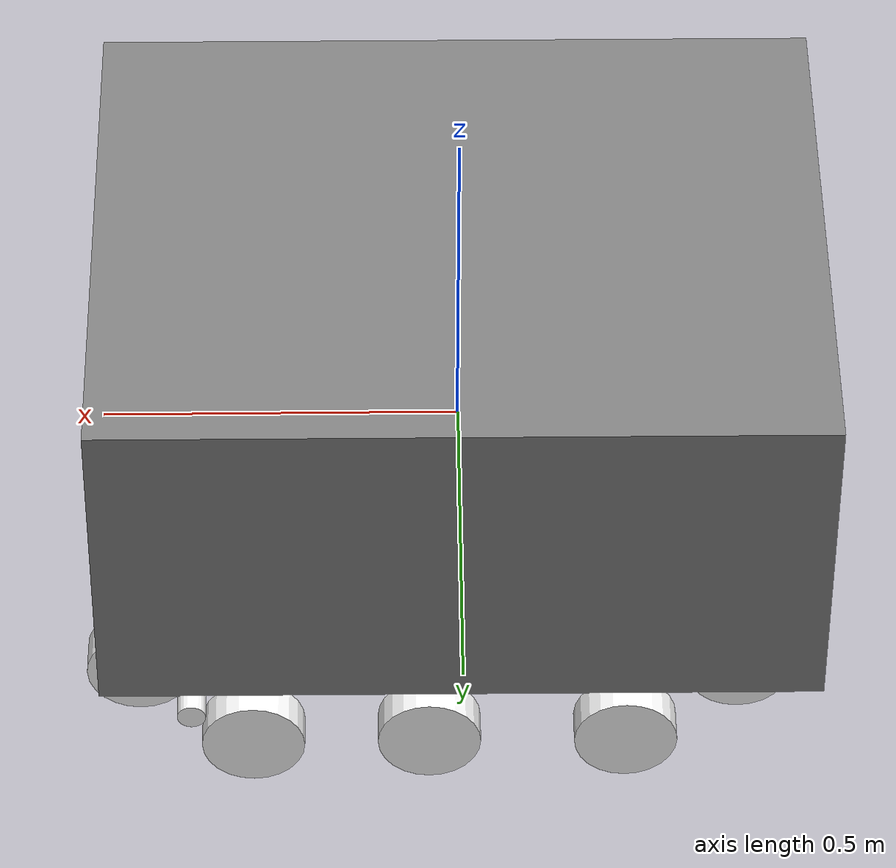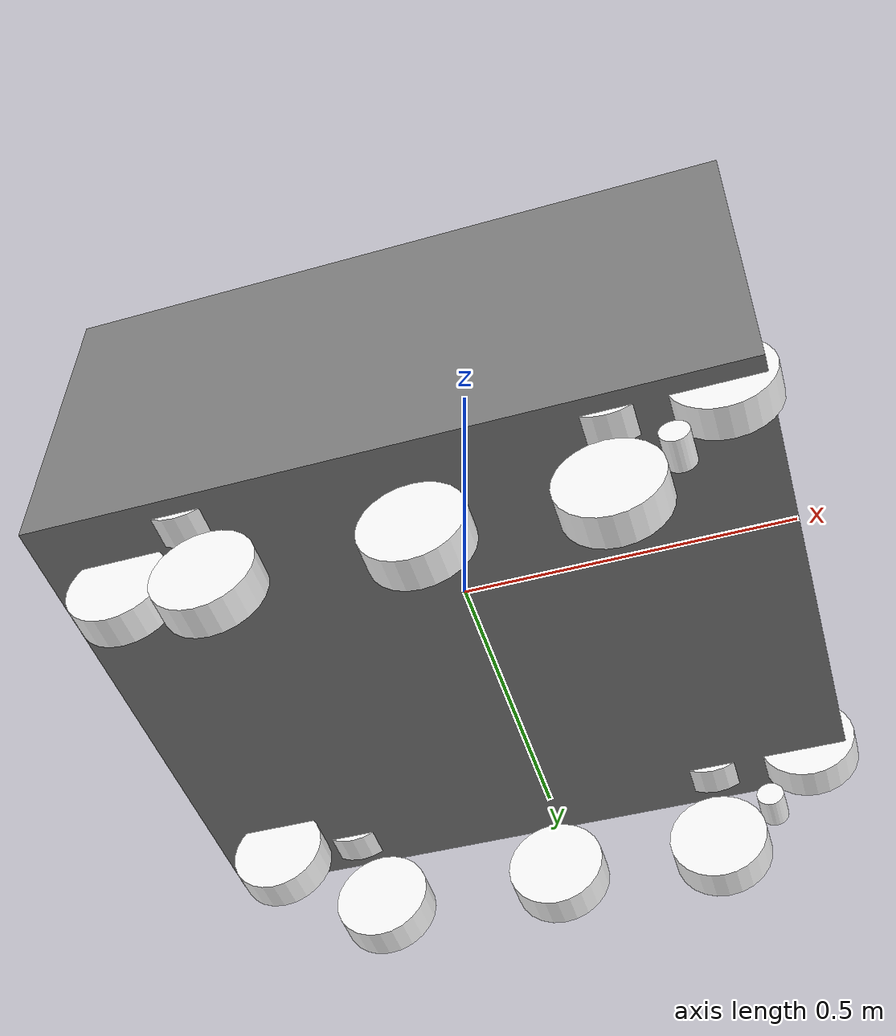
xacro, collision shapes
<?xml version="1.0" encoding="utf-8"?>
<robot  name="bunker" xmlns:xacro="http://www.ros.org/wiki/xacro">
  <!-- xacro arg for controller params file (absolute path) injected from launch -->
  <xacro:arg name="controllers_yaml" default=""/>

  <!-- KDL requires the root link to have no inertia. -->
  <link name="base_footprint"/>
  <joint name="base_footprint_joint" type="fixed">
    <parent link="base_footprint"/>
    <child link="base_link"/>
    <origin xyz="0 0 0" rpy="0 0 0"/>
  </joint>

  <link
    name="base_link">
     <inertial>
      <origin
        xyz="0.0212410555532523 0.00475458359568469 -0.127580557949736"
        rpy="0 0 0" />
      <mass
        value="22" />
      <inertia
        ixx="0.607716166684979"
        ixy="1.92178193996147E-05"
        ixz="-0.036532069356182"
        iyy="1.70041426855404"
        iyz="2.16963122007266E-05"
        izz="1.84232351935185" />
    </inertial>
    <visual>
      <origin
        xyz="0.53 -0.392 -0.358"
        rpy="1.57 0 3.14" />
      <geometry>
        <mesh
          filename="package://bunker_description/meshes/bunker.stl" scale="0.001 0.001 0.001" />
      </geometry>
      <material
        name="">
        <color
          rgba="0.5 0.5 0.5  1" />
      </material>
    </visual>
    <collision>
      <origin
        xyz="0.0 0.0 0.1"
        rpy="0 0 0" />
      <geometry>
        <!-- Replaced mesh with simpler box collision for performance -->
        <box size="1.0 0.8 0.5" />
      </geometry>
    </collision>
  </link>
  <link
    name="wheel1_Link">
    <inertial>
      <origin
        xyz="0 -1.38777878078145E-17 -0.0719999999999999"
        rpy="0 0 0" />
      <mass
        value="0.392034219968119" />
      <inertia
        ixx="0.000378440530116381"
        ixy="5.60822736805661E-21"
        ixz="3.04207802822425E-20"
        iyy="0.000378440530116381"
        iyz="-7.56626980356474E-21"
        izz="0.000710150518820894" />
    </inertial>
    <visual>
      <origin
        xyz="0 0 0"
        rpy="0 0 0" />
      <geometry>
        <mesh
          filename="package://bunker_description/meshes/wheel1_link.stl" />
      </geometry>
      <material
        name="">
        <color
          rgba="1 1 1 1" />
      </material>
    </visual>
    <collision>
      <origin
        xyz="0 0 0"
        rpy="0 0 0" />
      <geometry>
        <!-- Replaced mesh with cylinder collision for performance. radius=0.072 length=0.05 from visual estimate -->
        <cylinder length="0.05" radius="0.072" />
      </geometry>
    </collision>
  </link>
  <joint
    name="wheel1_joint"
    type="continuous">
    <origin
      xyz="0.44403 0.3495 -0.12853"
      rpy="1.5708 0 -3.1416" />
    <parent
      link="base_link" />
    <child
      link="wheel1_Link" />
    <axis
      xyz="0 0 1" />
    <limit
      effort="100"
      velocity="100" />
  </joint>
  <link
    name="wheel1.1_Link">
    <inertial>
      <origin
        xyz="-1.74279013442913E-08 5.87093572021469E-08 -0.0720000000000001"
        rpy="0 0 0" />
      <mass
        value="0.190328287901002" />
      <inertia
        ixx="6.58750963981394E-05"
        ixy="-1.46558944641469E-09"
        ixz="-8.34967331718859E-12"
        iyy="6.58795984671517E-05"
        iyz="-2.4786046130206E-12"
        izz="0.000112721820875598" />
    </inertial>
    <visual>
      <origin
        xyz="0 0 0"
        rpy="0 0 0" />
      <geometry>
        <mesh
          filename="package://bunker_description/meshes/wheel1.1_link.stl" />
      </geometry>
      <material
        name="">
        <color
          rgba="1 1 1 1" />
      </material>
    </visual>
    <collision>
      <origin
        xyz="0 0 0"
        rpy="0 0 0" />
      <geometry>
        <cylinder length="0.05" radius="0.02" />
      </geometry>
    </collision>
  </link>
  <joint
    name="wheel1.1_joint"
    type="continuous">
    <origin
      xyz="0.37551 0.3495 -0.22305"
      rpy="1.5708 0 -3.1416" />
    <parent
      link="base_link" />
    <child
      link="wheel1.1_Link" />
    <axis
      xyz="0 0 1" />
    <limit
      effort="100"
      velocity="100" />
  </joint>
  <link
    name="wheel1.2_Link">
    <inertial>
      <origin
        xyz="1.66533453693773E-16 4.16333634234434E-17 -0.0720000000000002"
        rpy="0 0 0" />
      <mass
        value="0.271192811687251" />
      <inertia
        ixx="0.000179574259018481"
        ixy="1.15789498120549E-20"
        ixz="1.3563351843978E-21"
        iyy="0.000179574259018481"
        iyz="6.0369822309622E-23"
        izz="0.000332594534732139" />
    </inertial>
    <visual>
      <origin
        xyz="0 0 0"
        rpy="0 0 0" />
      <geometry>
        <mesh
          filename="package://bunker_description/meshes/wheel1.2_link.stl" />
      </geometry>
      <material
        name="">
        <color
          rgba="1 1 1 1" />
      </material>
    </visual>
    <collision>
      <origin
        xyz="0 0 0"
        rpy="0 0 0" />
      <geometry>
         <!-- Replaced mesh with cylinder collision for performance -->
        <cylinder length="0.05" radius="0.072" />
      </geometry>
    </collision>
  </link>
  <joint
    name="wheel1.2_joint"
    type="continuous"> <!-- Changed from revolute to continuous -->
    <origin
      xyz="0.29039 0.3495 -0.28104"
      rpy="1.5708 0 -3.1416" />
    <parent
      link="base_link" />
    <child
      link="wheel1.2_Link" />
    <axis
      xyz="0 0 1" />
    <limit
      effort="100"
      velocity="100" />
  </joint>
  <link
    name="wheel1.3_Link">
    <inertial>
      <origin
        xyz="3.44025652177504E-05 -2.66346274915008E-05 -0.0701504149473696"
        rpy="0 0 0" />
      <mass
        value="0.245835028330933" />
      <inertia
        ixx="0.000105254202004996"
        ixy="1.32328029886322E-08"
        ixz="3.84294589102693E-11"
        iyy="0.000105248656147198"
        iyz="-1.41155611914915E-11"
        izz="0.000173280771745758" />
    </inertial>
    <visual>
      <origin
        xyz="0 0 0"
        rpy="0 0 0" />
      <geometry>
        <mesh
          filename="package://bunker_description/meshes/wheel1.3_link.stl" />
      </geometry>
      <material
        name="">
        <color
          rgba="1 1 1 1" />
      </material>
    </visual>
    <collision>
      <origin
        xyz="0 0 0"
        rpy="0 0 0" />
      <geometry>
        <cylinder length="0.05" radius="0.072" />
      </geometry>
    </collision>
  </link>
  <joint
    name="wheel1.3_joint"
    type="continuous"> <!-- Changed from revolute to continuous -->
    <origin
      xyz="0.29603 0.3495 -0.087"
      rpy="1.5708 0 -3.1416" />
    <parent
      link="base_link" />
    <child
      link="wheel1.3_Link" />
    <axis
      xyz="0 0 1" />
    <limit
      effort="100"
      velocity="100" />
  </joint>
  <link
    name="wheel2_Link">
    <inertial>
      <origin
        xyz="-1.66533453693773E-16 0 0.072"
        rpy="0 0 0" />
      <mass
        value="0.392034219968119" />
      <inertia
        ixx="0.000378440530116381"
        ixy="3.37302217863781E-21"
        ixz="2.71827270955143E-20"
        iyy="0.000378440530116381"
        iyz="-7.32821644893157E-21"
        izz="0.000710150518820894" />
    </inertial>
    <visual>
      <origin
        xyz="0 0 0"
        rpy="0 0 0" />
      <geometry>
        <mesh
          filename="package://bunker_description/meshes/wheel2_link.stl" />
      </geometry>
      <material
        name="">
        <color
          rgba="1 1 1 1" />
      </material>
    </visual>
    <collision>
      <origin
        xyz="0 0 0"
        rpy="0 0 0" />
      <geometry>
         <!-- Replaced mesh with cylinder collision for performance -->
        <cylinder length="0.05" radius="0.072" />
      </geometry>
    </collision>
  </link>
  <joint
    name="wheel2_joint"
    type="continuous">
    <origin
      xyz="0.44403 -0.3495 -0.12853"
      rpy="1.5708 0 -3.1416" />
    <parent
      link="base_link" />
    <child
      link="wheel2_Link" />
    <axis
      xyz="0 0 1" />
    <limit
      effort="100"
      velocity="100" />
  </joint>
  <link
    name="wheel2.1_Link">
    <inertial>
      <origin
        xyz="-1.74279017328693E-08 5.87093572160247E-08 0.0720000000000002"
        rpy="0 0 0" />
      <mass
        value="0.190328287901002" />
      <inertia
        ixx="6.58750963981394E-05"
        ixy="-1.46558944642761E-09"
        ixz="-8.34967332343028E-12"
        iyy="6.58795984671517E-05"
        iyz="-2.47860459929511E-12"
        izz="0.000112721820875598" />
    </inertial>
    <visual>
      <origin
        xyz="0 0 0"
        rpy="0 0 0" />
      <geometry>
        <mesh
          filename="package://bunker_description/meshes/wheel2.1_link.stl" />
      </geometry>
      <material
        name="">
        <color
          rgba="1 1 1 1" />
      </material>
    </visual>
    <collision>
      <origin
        xyz="0 0 0"
        rpy="0 0 0" />
      <geometry>
        <cylinder length="0.05" radius="0.02" />
      </geometry>
    </collision>
  </link>
  <joint
    name="wheel2.1_joint"
    type="continuous">
    <origin
      xyz="0.37551 -0.3495 -0.22305"
      rpy="1.5708 0 -3.1416" />
    <parent
      link="base_link" />
    <child
      link="wheel2.1_Link" />
    <axis
      xyz="0 0 1" />
    <limit
      effort="100"
      velocity="100" />
  </joint>
  <link
    name="wheel2.2_Link">
    <inertial>
      <origin
        xyz="-1.38777878078145E-16 -4.85722573273506E-17 0.0720000000000003"
        rpy="0 0 0" />
      <mass
        value="0.27119281168725" />
      <inertia
        ixx="0.00017957425901848"
        ixy="6.28960386226657E-21"
        ixz="2.14010788664762E-21"
        iyy="0.00017957425901848"
        iyz="1.27709655724716E-22"
        izz="0.000332594534732139" />
    </inertial>
    <visual>
      <origin
        xyz="0 0 0"
        rpy="0 0 0" />
      <geometry>
        <mesh
          filename="package://bunker_description/meshes/wheel2.2_link.stl" />
      </geometry>
      <material
        name="">
        <color
          rgba="1 1 1 1" />
      </material>
    </visual>
    <collision>
      <origin
        xyz="0 0 0"
        rpy="0 0 0" />
      <geometry>
         <!-- Replaced mesh with cylinder collision for performance -->
        <cylinder length="0.05" radius="0.072" />
      </geometry>
    </collision>
  </link>
  <joint
    name="wheel2.2_joint"
    type="continuous"> <!-- Changed from revolute to continuous -->
    <origin
      xyz="0.29039 -0.3495 -0.28104"
      rpy="1.5708 0 -3.1416" />
    <parent
      link="base_link" />
    <child
      link="wheel2.2_Link" />
    <axis
      xyz="0 0 1" />
    <limit
      effort="100"
      velocity="100" />
  </joint>
  <link
    name="wheel2.3_Link">
    <inertial>
      <origin
        xyz="3.51083051564616E-05 -2.7181014665284E-05 0.0709276770204769"
        rpy="0 0 0" />
      <mass
        value="0.240893303086836" />
      <inertia
        ixx="0.000105035118852508"
        ixy="1.32328029886296E-08"
        ixz="3.84294589110161E-11"
        iyy="0.00010502957299471"
        iyz="-1.41155611875745E-11"
        izz="0.00017298179736849" />
    </inertial>
    <visual>
      <origin
        xyz="0 0 0"
        rpy="0 0 0" />
      <geometry>
        <mesh
          filename="package://bunker_description/meshes/wheel2.3_link.stl" />
      </geometry>
      <material
        name="">
        <color
          rgba="1 1 1 1" />
      </material>
    </visual>
    <collision>
      <origin
        xyz="0 0 0"
        rpy="0 0 0" />
      <geometry>
        <cylinder length="0.05" radius="0.072" />
      </geometry>
    </collision>
  </link>
  <joint
    name="wheel2.3_joint"
    type="continuous"> <!-- Changed from revolute to continuous -->
    <origin
      xyz="0.29603 -0.3495 -0.087"
      rpy="1.5708 0 -3.1416" />
    <parent
      link="base_link" />
    <child
      link="wheel2.3_Link" />
    <axis
      xyz="0 0 1" />
    <limit
      effort="100"
      velocity="100" />
  </joint>
  <link
    name="wheel3_Link">
    <inertial>
      <origin
        xyz="-1.5143569731535E-10 7.07767178198537E-16 -0.0246054820762604"
        rpy="0 0 0" />
      <mass
        value="1.35828296445862" />
      <inertia
        ixx="0.00232456013775523"
        ixy="-1.61343020248111E-09"
        ixz="-4.5670735364335E-13"
        iyy="0.00232456564213727"
        iyz="-1.36036258272812E-18"
        izz="0.00308347787030649" />
    </inertial>
    <visual>
      <origin
        xyz="0 0 0"
        rpy="0 0 0" />
      <geometry>
        <mesh
          filename="package://bunker_description/meshes/wheel3_link.stl" />
      </geometry>
      <material
        name="">
        <color
          rgba="1 1 1 1" />
      </material>
    </visual>
    <collision>
      <origin
        xyz="0 0 0"
        rpy="0 0 0" />
      <geometry>
          <!-- Replaced mesh with cylinder collision for performance -->
        <cylinder length="0.05" radius="0.072" />
      </geometry>
    </collision>
  </link>
  <joint
    name="wheel3_joint"
    type="continuous">
    <origin
      xyz="-0.38871 0.295 -0.19381"
      rpy="1.5708 0 -3.1416" />
    <parent
      link="base_link" />
    <child
      link="wheel3_Link" />
    <axis
      xyz="0 0 1" />
    <limit
      effort="100"
      velocity="100" />
  </joint>
  <link
    name="wheel3.1_Link">
    <inertial>
      <origin
        xyz="5.55111512312578E-17 5.55111512312578E-17 -0.0720000000000002"
        rpy="0 0 0" />
      <mass
        value="0.271192811687251" />
      <inertia
        ixx="0.000179574259018481"
        ixy="-1.73824343982442E-20"
        ixz="-2.53159654382751E-21"
        iyy="0.000179574259018481"
        iyz="-3.13741449878515E-21"
        izz="0.000332594534732139" />
    </inertial>
    <visual>
      <origin
        xyz="0 0 0"
        rpy="0 0 0" />
      <geometry>
        <mesh
          filename="package://bunker_description/meshes/wheel3.1_link.stl" />
      </geometry>
      <material
        name="">
        <color
          rgba="1 1 1 1" />
      </material>
    </visual>
    <collision>
      <origin
        xyz="0 0 0"
        rpy="0 0 0" />
      <geometry>
         <!-- Replaced mesh with cylinder collision for performance -->
        <cylinder length="0.05" radius="0.072" />
      </geometry>
    </collision>
  </link>
  <joint
    name="wheel3.1_joint"
    type="continuous">
    <origin
      xyz="-0.23111 0.3495 -0.27671"
      rpy="1.5708 0 -3.1416" />
    <parent
      link="base_link" />
    <child
      link="wheel3.1_Link" />
    <axis
      xyz="0 0 1" />
    <limit
      effort="100"
      velocity="100" />
  </joint>
  <link
    name="wheel3.2_Link">
    <inertial>
      <origin
        xyz="7.58128369110489E-17 7.63278329429795E-17 -0.0720000000000003"
        rpy="0 0 0" />
      <mass
        value="0.27119281168725" />
      <inertia
        ixx="0.00017957425901848"
        ixy="9.82929052458426E-22"
        ixz="1.10990388135291E-21"
        iyy="0.00017957425901848"
        iyz="-4.81322327079121E-21"
        izz="0.000332594534732139" />
    </inertial>
    <visual>
      <origin
        xyz="0 0 0"
        rpy="0 0 0" />
      <geometry>
        <mesh
          filename="package://bunker_description/meshes/wheel3.2_link.stl" />
      </geometry>
      <material
        name="">
        <color
          rgba="1 1 1 1" />
      </material>
    </visual>
    <collision>
      <origin
        xyz="0 0 0"
        rpy="0 0 0" />
      <geometry>
         <!-- Replaced mesh with cylinder collision for performance -->
        <cylinder length="0.05" radius="0.072" />
      </geometry>
    </collision>
  </link>
  <joint
    name="wheel3.2_joint"
    type="continuous">
    <origin
      xyz="0.043885 0.3495 -0.27671"
      rpy="1.5708 0 -3.1416" />
    <parent
      link="base_link" />
    <child
      link="wheel3.2_Link" />
    <axis
      xyz="0 0 1" />
    <limit
      effort="100"
      velocity="100" />
  </joint>
  <link
    name="wheel3.3_Link">
    <inertial>
      <origin
        xyz="1.37732703020532E-08 -5.29206664124648E-05 -0.0701501700151683"
        rpy="0 0 0" />
      <mass
        value="0.245836054976119" />
      <inertia
        ixx="0.000105264944409738"
        ixy="7.98231761628902E-12"
        ixz="6.80400273605472E-11"
        iyy="0.000105238344260685"
        iyz="-2.72106317781962E-11"
        izz="0.000173281039335396" />
    </inertial>
    <visual>
      <origin
        xyz="0 0 0"
        rpy="0 0 0" />
      <geometry>
        <mesh
          filename="package://bunker_description/meshes/wheel3.3_link.stl" />
      </geometry>
      <material
        name="">
        <color
          rgba="1 1 1 1" />
      </material>
    </visual>
    <collision>
      <origin
        xyz="0 0 0"
        rpy="0 0 0" />
      <geometry>
        <cylinder length="0.05" radius="0.072" />
      </geometry>
    </collision>
  </link>
  <joint
    name="wheel3.3_joint"
    type="continuous"> <!-- Changed from revolute to continuous -->
    <origin
      xyz="-0.28597 0.3495 -0.087"
      rpy="1.5708 0 -3.1416" />
    <parent
      link="base_link" />
    <child
      link="wheel3.3_Link" />
    <axis
      xyz="0 0 1" />
    <limit
      effort="100"
      velocity="100" />
  </joint>
  <link
    name="wheel4_Link">
    <inertial>
      <origin
        xyz="5.55111512312578E-17 1.51436273243544E-10 0.0245928853369881"
        rpy="0 0 0" />
      <mass
        value="1.35828296445862" />
      <inertia
        ixx="0.00232456564213727"
        ixy="-1.6134302023684E-09"
        ixz="-3.67391703208082E-19"
        iyy="0.00232456013775523"
        iyz="-4.56707494796216E-13"
        izz="0.00308347787030649" />
    </inertial>
    <visual>
      <origin
        xyz="0 0 0"
        rpy="0 0 0" />
      <geometry>
        <mesh
          filename="package://bunker_description/meshes/wheel4_link.stl" />
      </geometry>
      <material
        name="">
        <color
          rgba="1 1 1 1" />
      </material>
    </visual>
    <collision>
      <origin
        xyz="0 0 0"
        rpy="0 0 0" />
      <geometry>
         <!-- Replaced mesh with cylinder collision for performance -->
        <cylinder length="0.05" radius="0.072" />
      </geometry>
    </collision>
  </link>
  <joint
    name="wheel4_joint"
    type="continuous">
    <origin
      xyz="-0.38871 -0.295 -0.19381"
      rpy="1.5708 0 -3.1416" />
    <parent
      link="base_link" />
    <child
      link="wheel4_Link" />
    <axis
      xyz="0 0 1" />
    <limit
      effort="100"
      velocity="100" />
  </joint>
  <link
    name="wheel4.1_Link">
    <inertial>
      <origin
        xyz="-1.11022302462516E-16 -5.55111512312578E-17 0.0720000000000002"
        rpy="0 0 0" />
      <mass
        value="0.271192811687251" />
      <inertia
        ixx="0.000179574259018481"
        ixy="-7.93399024302093E-21"
        ixz="-2.13342044570487E-21"
        iyy="0.000179574259018481"
        iyz="-3.23624373974149E-21"
        izz="0.000332594534732139" />
    </inertial>
    <visual>
      <origin
        xyz="0 0 0"
        rpy="0 0 0" />
      <geometry>
        <mesh
          filename="package://bunker_description/meshes/wheel4.1_link.stl" />
      </geometry>
      <material
        name="">
        <color
          rgba="1 1 1 1" />
      </material>
    </visual>
    <collision>
      <origin
        xyz="0 0 0"
        rpy="0 0 0" />
      <geometry>
         <!-- Replaced mesh with cylinder collision for performance -->
        <cylinder length="0.05" radius="0.072" />
      </geometry>
    </collision>
  </link>
  <joint
    name="wheel4.1_joint"
    type="continuous">
    <origin
      xyz="-0.23111 -0.3495 -0.27671"
      rpy="1.5708 0 -3.1416" />
    <parent
      link="base_link" />
    <child
      link="wheel4.1_Link" />
    <axis
      xyz="0 0 1" />
    <limit
      effort="100"
      velocity="100" />
  </joint>
  <link
    name="wheel4.2_Link">
    <inertial>
      <origin
        xyz="-7.64498056873841E-17 -4.85722573273506E-17 0.0720000000000004"
        rpy="0 0 0" />
      <mass
        value="0.27119281168725" />
      <inertia
        ixx="0.00017957425901848"
        ixy="6.3005828905746E-22"
        ixz="1.1753358195074E-22"
        iyy="0.00017957425901848"
        iyz="-3.27347099653111E-21"
        izz="0.000332594534732139" />
    </inertial>
    <visual>
      <origin
        xyz="0 0 0"
        rpy="0 0 0" />
      <geometry>
        <mesh
          filename="package://bunker_description/meshes/wheel4.2_link.stl" />
      </geometry>
      <material
        name="">
        <color
          rgba="1 1 1 1" />
      </material>
    </visual>
    <collision>
      <origin
        xyz="0 0 0"
        rpy="0 0 0" />
      <geometry>
         <!-- Replaced mesh with cylinder collision for performance -->
        <cylinder length="0.05" radius="0.072" />
      </geometry>
    </collision>
  </link>
  <joint
    name="wheel4.2_joint"
    type="continuous">
    <origin
      xyz="0.043885 -0.3495 -0.27671"
      rpy="1.5708 0 -3.1416" />
    <parent
      link="base_link" />
    <child
      link="wheel4.2_Link" />
    <axis
      xyz="0 0 1" />
    <limit
      effort="100"
      velocity="100" />
  </joint>
  <link
    name="wheel4.3_Link">
    <inertial>
      <origin
        xyz="1.37732700244975E-08 -5.29206664124926E-05 0.0701152686893121"
        rpy="0 0 0" />
      <mass
        value="0.245836054976119" />
      <inertia
        ixx="0.000105264944409738"
        ixy="7.98231761858719E-12"
        ixz="6.80400273764357E-11"
        iyy="0.000105238344260685"
        iyz="-2.72106317797361E-11"
        izz="0.000173281039335396" />
    </inertial>
    <visual>
      <origin
        xyz="0 0 0"
        rpy="0 0 0" />
      <geometry>
        <mesh
          filename="package://bunker_description/meshes/wheel4.3_link.stl" />
      </geometry>
      <material
        name="">
        <color
          rgba="1 1 1 1" />
      </material>
    </visual>
    <collision>
      <origin
        xyz="0 0 0"
        rpy="0 0 0" />
      <geometry>
        <cylinder length="0.05" radius="0.072" />
      </geometry>
    </collision>
  </link>
  <joint
    name="wheel4.3_joint"
    type="continuous">
    <origin
      xyz="-0.28597 -0.3495 -0.087"
      rpy="1.5708 0 -3.1416" />
    <parent
      link="base_link" />
    <child
      link="wheel4.3_Link" />
    <axis
      xyz="0 0 1" />
    <limit
      effort="100"
      velocity="100" />
  </joint>

  <!-- /////////////////////////////////   gazebo color   ////////////////////////////////////// -->

  <ros2_control name="GazeboSimSystem" type="system">
    <hardware>
      <plugin>gz_ros2_control/GazeboSimSystem</plugin>
    </hardware>
    <joint name="wheel1_joint">
      <command_interface name="velocity">
        <param name="min">-20</param>
        <param name="max">20</param>
      </command_interface>
      <state_interface name="position"/>
      <state_interface name="velocity"/>
    </joint>
    <joint name="wheel2_joint">
      <command_interface name="velocity">
        <param name="min">-20</param>
        <param name="max">20</param>
      </command_interface>
      <state_interface name="position"/>
      <state_interface name="velocity"/>
    </joint>
    <joint name="wheel3_joint">
      <command_interface name="velocity">
        <param name="min">-20</param>
        <param name="max">20</param>
      </command_interface>
      <state_interface name="position"/>
      <state_interface name="velocity"/>
    </joint>
    <joint name="wheel4_joint">
      <command_interface name="velocity">
        <param name="min">-20</param>
        <param name="max">20</param>
      </command_interface>
      <state_interface name="position"/>
      <state_interface name="velocity"/>
    </joint>
    <!-- New joints for additional track wheels -->
    <joint name="wheel1.2_joint">
      <command_interface name="velocity">
        <param name="min">-20</param>
        <param name="max">20</param>
      </command_interface>
      <state_interface name="position"/>
      <state_interface name="velocity"/>
    </joint>
    <joint name="wheel3.1_joint">
      <command_interface name="velocity">
        <param name="min">-20</param>
        <param name="max">20</param>
      </command_interface>
      <state_interface name="position"/>
      <state_interface name="velocity"/>
    </joint>
    <joint name="wheel3.2_joint">
      <command_interface name="velocity">
        <param name="min">-20</param>
        <param name="max">20</param>
      </command_interface>
      <state_interface name="position"/>
      <state_interface name="velocity"/>
    </joint>
    <joint name="wheel4.1_joint">
      <command_interface name="velocity">
        <param name="min">-20</param>
        <param name="max">20</param>
      </command_interface>
      <state_interface name="position"/>
      <state_interface name="velocity"/>
    </joint>
    <joint name="wheel4.2_joint">
      <command_interface name="velocity">
        <param name="min">-20</param>
        <param name="max">20</param>
      </command_interface>
      <state_interface name="position"/>
      <state_interface name="velocity"/>
    </joint>
    <joint name="wheel2.2_joint">
      <command_interface name="velocity">
        <param name="min">-20</param>
        <param name="max">20</param>
      </command_interface>
      <state_interface name="position"/>
      <state_interface name="velocity"/>
    </joint>
    <!-- Passive track wheels need state interfaces so robot_state_publisher can publish TF. -->
    <joint name="wheel1.1_joint">
      <state_interface name="position"/>
      <state_interface name="velocity"/>
    </joint>
    <joint name="wheel1.3_joint">
      <state_interface name="position"/>
      <state_interface name="velocity"/>
    </joint>
    <joint name="wheel2.1_joint">
      <state_interface name="position"/>
      <state_interface name="velocity"/>
    </joint>
    <joint name="wheel2.3_joint">
      <state_interface name="position"/>
      <state_interface name="velocity"/>
    </joint>
    <joint name="wheel3.3_joint">
      <state_interface name="position"/>
      <state_interface name="velocity"/>
    </joint>
    <joint name="wheel4.3_joint">
      <state_interface name="position"/>
      <state_interface name="velocity"/>
    </joint>
  </ros2_control>

  <!-- Gazebo Sim integration: load gz/ign ros2_control bridge plugin -->
  <gazebo>
    <plugin filename="gz_ros2_control-system" name="gz_ros2_control::GazeboSimROS2ControlPlugin">
      <!-- Ensure controller_manager is created in the root namespace -->
      <ros>
        <namespace>/</namespace>
      </ros>
  <!-- Controller configs/types (loaded as plugin params file) -->
  <parameters>$(arg controllers_yaml)</parameters>
    </plugin>
  </gazebo>

  <!-- Gazebo physics tuning: ensure wheel collisions have enough friction so
       wheel rotation turns into traction (otherwise the wheels can spin in place).
       Adjust mu1/mu2 if it still slips. -->
  <gazebo reference="wheel1_Link">
    <mu1>0.8</mu1>
    <mu2>0.8</mu2>
  </gazebo>
  <gazebo reference="wheel2_Link">
    <mu1>0.8</mu1>
    <mu2>0.8</mu2>
  </gazebo>
  <gazebo reference="wheel3_Link">
    <mu1>0.8</mu1>
    <mu2>0.8</mu2>
  </gazebo>
  <gazebo reference="wheel4_Link">
    <mu1>0.8</mu1>
    <mu2>0.8</mu2>
  </gazebo>
  <!-- Friction parameters for additional track wheels -->
  <gazebo reference="wheel1.2_Link">
    <mu1>0.8</mu1>
    <mu2>0.8</mu2>
  </gazebo>
  <gazebo reference="wheel3.1_Link">
    <mu1>0.8</mu1>
    <mu2>0.8</mu2>
  </gazebo>
  <gazebo reference="wheel3.2_Link">
    <mu1>0.8</mu1>
    <mu2>0.8</mu2>
  </gazebo>
  <gazebo reference="wheel4.1_Link">
    <mu1>0.8</mu1>
    <mu2>0.8</mu2>
  </gazebo>
  <gazebo reference="wheel4.2_Link">
    <mu1>0.8</mu1>
    <mu2>0.8</mu2>
  </gazebo>
  <gazebo reference="wheel2.2_Link">
    <mu1>0.8</mu1>
    <mu2>0.8</mu2>
  </gazebo>

</robot>
